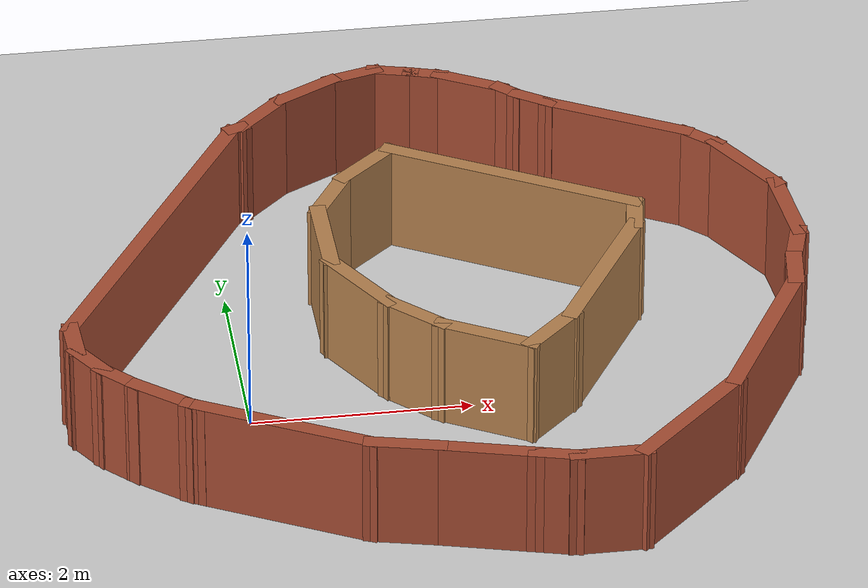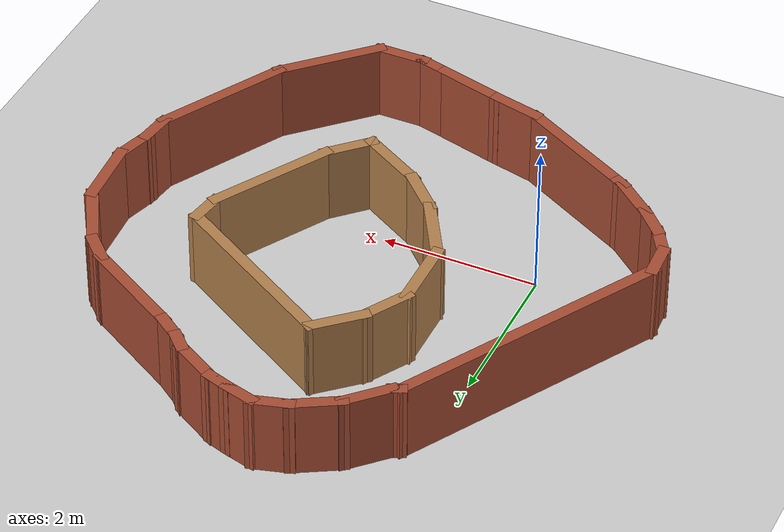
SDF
<sdf version="1.6">
 <world name="default">
  <light name="sun" type="directional">
   <pose>0 0 10 0 -0 0</pose>
   <diffuse>0.8 0.8 0.8 1</diffuse>
   <specular>0.1 0.1 0.1 1</specular>
   <attenuation>
    <range>1000</range>
    <constant>0.9</constant>
    <linear>0.01</linear>
    <quadratic>0.001</quadratic>
   </attenuation>
   <direction>-0.5 0.5 -1</direction>
  </light>
  <model name="ground_plane">
   <static>1</static>
   <link name="link">
    <collision name="collision">
     <geometry><plane><normal>0 0 1</normal><size>100 100</size></plane></geometry>
     <surface><friction><ode><mu>100</mu><mu2>50</mu2></ode></friction></surface>
    </collision>
    <visual name="visual">
     <cast_shadows>0</cast_shadows>
     <geometry><plane><normal>0 0 1</normal><size>100 100</size></plane></geometry>
     <material>
      <script><uri>file://media/materials/scripts/gazebo.material</uri><name>Gazebo/Grey</name></script>
     </material>
    </visual>
   </link>
  </model>
  <gravity>0 0 -9.8</gravity>
  <magnetic_field>6e-06 2.3e-05 -4.2e-05</magnetic_field>
  <atmosphere type="adiabatic"/>
  <physics name="default_physics" default="0" type="ode">
   <max_step_size>0.001</max_step_size>
   <real_time_factor>1</real_time_factor>
   <real_time_update_rate>1000</real_time_update_rate>
  </physics>
  <scene><ambient>0.4 0.4 0.4 1</ambient><background>0.7 0.7 0.7 1</background><shadows>1</shadows></scene>
  <spherical_coordinates>
   <surface_model>EARTH_WGS84</surface_model>
   <latitude_deg>0</latitude_deg>
   <longitude_deg>0</longitude_deg>
   <elevation>0</elevation>
   <heading_deg>0</heading_deg>
  </spherical_coordinates>
  <model name="lab_track2">
   <pose>1.77082 0.952619 0 0 -0 0</pose>
   <link name="Wall_0">
    <collision name="Wall_0_Collision">
     <geometry><box><size>0.75 0.15 1</size></box></geometry>
     <pose>0 0 0.5 0 -0 0</pose>
    </collision>
    <visual name="Wall_0_Visual">
     <pose>0 0 0.5 0 -0 0</pose>
     <geometry><box><size>0.75 0.15 1</size></box></geometry>
     <material>
      <script><uri>file://media/materials/scripts/gazebo.material</uri><name>Gazebo/Bricks</name></script>
      <ambient>1 1 1 1</ambient>
     </material>
    </visual>
    <pose>-0.761534 3.03129 0 0 0 -2.61831</pose>
   </link>
   <link name="Wall_1">
    <collision name="Wall_1_Collision">
     <geometry><box><size>0.745382 0.15 1</size></box></geometry>
     <pose>0 0 0.5 0 -0 0</pose>
    </collision>
    <visual name="Wall_1_Visual">
     <pose>0 0 0.5 0 -0 0</pose>
     <geometry><box><size>0.745382 0.15 1</size></box></geometry>
     <material>
      <script><uri>file://media/materials/scripts/gazebo.material</uri><name>Gazebo/Bricks</name></script>
      <ambient>1 1 1 1</ambient>
     </material>
    </visual>
    <pose>-1.23003 2.66879 0 0 0 -2.34669</pose>
   </link>
   <link name="Wall_10">
    <collision name="Wall_10_Collision">
     <geometry><box><size>0.732644 0.15 1</size></box></geometry>
     <pose>0 0 0.5 0 -0 0</pose>
    </collision>
    <visual name="Wall_10_Visual">
     <pose>0 0 0.5 0 -0 0</pose>
     <geometry><box><size>0.732644 0.15 1</size></box></geometry>
     <material>
      <script><uri>file://media/materials/scripts/gazebo.material</uri><name>Gazebo/Bricks</name></script>
      <ambient>1 1 1 1</ambient>
     </material>
    </visual>
    <pose>-0.652534 -2.90971 0 0 0 -0.235812</pose>
   </link>
   <link name="Wall_11">
    <collision name="Wall_11_Collision">
     <geometry><box><size>0.993767 0.15 1</size></box></geometry>
     <pose>0 0 0.5 0 -0 0</pose>
    </collision>
    <visual name="Wall_11_Visual">
     <pose>0 0 0.5 0 -0 0</pose>
     <geometry><box><size>0.993767 0.15 1</size></box></geometry>
     <material>
      <script><uri>file://media/materials/scripts/gazebo.material</uri><name>Gazebo/Bricks</name></script>
      <ambient>1 1 1 1</ambient>
     </material>
    </visual>
    <pose>0.037966 -3.08771 0 0 0 -0.263655</pose>
   </link>
   <link name="Wall_12">
    <collision name="Wall_12_Collision">
     <geometry><box><size>0.5 0.15 1</size></box></geometry>
     <pose>0 0 0.5 0 -0 0</pose>
    </collision>
    <visual name="Wall_12_Visual">
     <pose>0 0 0.5 0 -0 0</pose>
     <geometry><box><size>0.5 0.15 1</size></box></geometry>
     <material>
      <script><uri>file://media/materials/scripts/gazebo.material</uri><name>Gazebo/Bricks</name></script>
      <ambient>1 1 1 1</ambient>
     </material>
    </visual>
    <pose>0.614466 -3.24271 0 0 0 -0.260234</pose>
   </link>
   <link name="Wall_13">
    <collision name="Wall_13_Collision">
     <geometry><box><size>0.75 0.15 1</size></box></geometry>
     <pose>0 0 0.5 0 -0 0</pose>
    </collision>
    <visual name="Wall_13_Visual">
     <pose>0 0 0.5 0 -0 0</pose>
     <geometry><box><size>0.75 0.15 1</size></box></geometry>
     <material>
      <script><uri>file://media/materials/scripts/gazebo.material</uri><name>Gazebo/Bricks</name></script>
      <ambient>1 1 1 1</ambient>
     </material>
    </visual>
    <pose>1.08347 -3.28771 0 0 -0 0</pose>
   </link>
   <link name="Wall_14">
    <collision name="Wall_14_Collision">
     <geometry><box><size>1.5 0.15 1</size></box></geometry>
     <pose>0 0 0.5 0 -0 0</pose>
    </collision>
    <visual name="Wall_14_Visual">
     <pose>0 0 0.5 0 -0 0</pose>
     <geometry><box><size>1.5 0.15 1</size></box></geometry>
     <material>
      <script><uri>file://media/materials/scripts/gazebo.material</uri><name>Gazebo/Bricks</name></script>
      <ambient>1 1 1 1</ambient>
     </material>
    </visual>
    <pose>1.86047 -2.81071 0 0 -0 0.785398</pose>
   </link>
   <link name="Wall_15">
    <collision name="Wall_15_Collision">
     <geometry><box><size>1.88335 0.15 1</size></box></geometry>
     <pose>0 0 0.5 0 -0 0</pose>
    </collision>
    <visual name="Wall_15_Visual">
     <pose>0 0 0.5 0 -0 0</pose>
     <geometry><box><size>1.88335 0.15 1</size></box></geometry>
     <material>
      <script><uri>file://media/materials/scripts/gazebo.material</uri><name>Gazebo/Bricks</name></script>
      <ambient>1 1 1 1</ambient>
     </material>
    </visual>
    <pose>2.75097 -1.57171 0 0 -0 1.07361</pose>
   </link>
   <link name="Wall_16">
    <collision name="Wall_16_Collision">
     <geometry><box><size>0.523244 0.15 1</size></box></geometry>
     <pose>0 0 0.5 0 -0 0</pose>
    </collision>
    <visual name="Wall_16_Visual">
     <pose>0 0 0.5 0 -0 0</pose>
     <geometry><box><size>0.523244 0.15 1</size></box></geometry>
     <material>
      <script><uri>file://media/materials/scripts/gazebo.material</uri><name>Gazebo/Bricks</name></script>
      <ambient>1 1 1 1</ambient>
     </material>
    </visual>
    <pose>3.19047 -0.62471 0 0 -0 1.43117</pose>
   </link>
   <link name="Wall_17">
    <collision name="Wall_17_Collision">
     <geometry><box><size>0.588397 0.15 1</size></box></geometry>
     <pose>0 0 0.5 0 -0 0</pose>
    </collision>
    <visual name="Wall_17_Visual">
     <pose>0 0 0.5 0 -0 0</pose>
     <geometry><box><size>0.588397 0.15 1</size></box></geometry>
     <material>
      <script><uri>file://media/materials/scripts/gazebo.material</uri><name>Gazebo/Bricks</name></script>
      <ambient>1 1 1 1</ambient>
     </material>
    </visual>
    <pose>3.2776 -0.22921 0 0 -0 1.28814</pose>
   </link>
   <link name="Wall_18">
    <collision name="Wall_18_Collision">
     <geometry><box><size>0.983081 0.15 1</size></box></geometry>
     <pose>0 0 0.5 0 -0 0</pose>
    </collision>
    <visual name="Wall_18_Visual">
     <pose>0 0 0.5 0 -0 0</pose>
     <geometry><box><size>0.983081 0.15 1</size></box></geometry>
     <material>
      <script><uri>file://media/materials/scripts/gazebo.material</uri><name>Gazebo/Bricks</name></script>
      <ambient>1 1 1 1</ambient>
     </material>
    </visual>
    <pose>3.31589 0.39679 0 0 -0 1.6415</pose>
   </link>
   <link name="Wall_19">
    <collision name="Wall_19_Collision">
     <geometry><box><size>1.01372 0.15 1</size></box></geometry>
     <pose>0 0 0.5 0 -0 0</pose>
    </collision>
    <visual name="Wall_19_Visual">
     <pose>0 0 0.5 0 -0 0</pose>
     <geometry><box><size>1.01372 0.15 1</size></box></geometry>
     <material>
      <script><uri>file://media/materials/scripts/gazebo.material</uri><name>Gazebo/Bricks</name></script>
      <ambient>1 1 1 1</ambient>
     </material>
    </visual>
    <pose>3.07747 1.18979 0 0 -0 2.07643</pose>
   </link>
   <link name="Wall_2">
    <collision name="Wall_2_Collision">
     <geometry><box><size>0.248027 0.15 1</size></box></geometry>
     <pose>0 0 0.5 0 -0 0</pose>
    </collision>
    <visual name="Wall_2_Visual">
     <pose>0 0 0.5 0 -0 0</pose>
     <geometry><box><size>0.248027 0.15 1</size></box></geometry>
     <material>
      <script><uri>file://media/materials/scripts/gazebo.material</uri><name>Gazebo/Bricks</name></script>
      <ambient>1 1 1 1</ambient>
     </material>
    </visual>
    <pose>-1.48403 2.43779 0 0 0 -2.75542</pose>
   </link>
   <link name="Wall_20">
    <collision name="Wall_20_Collision">
     <geometry><box><size>0.5 0.15 1</size></box></geometry>
     <pose>0 0 0.5 0 -0 0</pose>
    </collision>
    <visual name="Wall_20_Visual">
     <pose>0 0 0.5 0 -0 0</pose>
     <geometry><box><size>0.5 0.15 1</size></box></geometry>
     <material>
      <script><uri>file://media/materials/scripts/gazebo.material</uri><name>Gazebo/Bricks</name></script>
      <ambient>1 1 1 1</ambient>
     </material>
    </visual>
    <pose>2.74447 1.69129 0 0 -0 2.35619</pose>
   </link>
   <link name="Wall_21">
    <collision name="Wall_21_Collision">
     <geometry><box><size>1.5 0.15 1</size></box></geometry>
     <pose>0 0 0.5 0 -0 0</pose>
    </collision>
    <visual name="Wall_21_Visual">
     <pose>0 0 0.5 0 -0 0</pose>
     <geometry><box><size>1.5 0.15 1</size></box></geometry>
     <material>
      <script><uri>file://media/materials/scripts/gazebo.material</uri><name>Gazebo/Bricks</name></script>
      <ambient>1 1 1 1</ambient>
     </material>
    </visual>
    <pose>2.03597 2.15279 0 0 -0 2.61794</pose>
   </link>
   <link name="Wall_22">
    <collision name="Wall_22_Collision">
     <geometry><box><size>0.474099 0.15 1</size></box></geometry>
     <pose>0 0 0.5 0 -0 0</pose>
    </collision>
    <visual name="Wall_22_Visual">
     <pose>0 0 0.5 0 -0 0</pose>
     <geometry><box><size>0.474099 0.15 1</size></box></geometry>
     <material>
      <script><uri>file://media/materials/scripts/gazebo.material</uri><name>Gazebo/Bricks</name></script>
      <ambient>1 1 1 1</ambient>
     </material>
    </visual>
    <pose>1.31947 2.58429 0 0 -0 2.52278</pose>
   </link>
   <link name="Wall_23">
    <collision name="Wall_23_Collision">
     <geometry><box><size>0.360993 0.15 1</size></box></geometry>
     <pose>0 0 0.5 0 -0 0</pose>
    </collision>
    <visual name="Wall_23_Visual">
     <pose>0 0 0.5 0 -0 0</pose>
     <geometry><box><size>0.360993 0.15 1</size></box></geometry>
     <material>
      <script><uri>file://media/materials/scripts/gazebo.material</uri><name>Gazebo/Bricks</name></script>
      <ambient>1 1 1 1</ambient>
     </material>
    </visual>
    <pose>1.11327 2.75329 0 0 -0 2.35078</pose>
   </link>
   <link name="Wall_24">
    <collision name="Wall_24_Collision">
     <geometry><box><size>0.75 0.15 1</size></box></geometry>
     <pose>0 0 0.5 0 -0 0</pose>
    </collision>
    <visual name="Wall_24_Visual">
     <pose>0 0 0.5 0 -0 0</pose>
     <geometry><box><size>0.75 0.15 1</size></box></geometry>
     <material>
      <script><uri>file://media/materials/scripts/gazebo.material</uri><name>Gazebo/Bricks</name></script>
      <ambient>1 1 1 1</ambient>
     </material>
    </visual>
    <pose>0.779274 2.97829 0 0 -0 2.61799</pose>
   </link>
   <link name="Wall_25">
    <collision name="Wall_25_Collision">
     <geometry><box><size>0.427248 0.15 1</size></box></geometry>
     <pose>0 0 0.5 0 -0 0</pose>
    </collision>
    <visual name="Wall_25_Visual">
     <pose>0 0 0.5 0 -0 0</pose>
     <geometry><box><size>0.427248 0.15 1</size></box></geometry>
     <material>
      <script><uri>file://media/materials/scripts/gazebo.material</uri><name>Gazebo/Bricks</name></script>
      <ambient>1 1 1 1</ambient>
     </material>
    </visual>
    <pose>0.386966 3.16979 0 0 -0 2.83806</pose>
   </link>
   <link name="Wall_26">
    <collision name="Wall_26_Collision">
     <geometry><box><size>0.5 0.15 1</size></box></geometry>
     <pose>0 0 0.5 0 -0 0</pose>
    </collision>
    <visual name="Wall_26_Visual">
     <pose>0 0 0.5 0 -0 0</pose>
     <geometry><box><size>0.5 0.15 1</size></box></geometry>
     <material>
      <script><uri>file://media/materials/scripts/gazebo.material</uri><name>Gazebo/Bricks</name></script>
      <ambient>1 1 1 1</ambient>
     </material>
    </visual>
    <pose>0.085466 3.25629 0 0 -0 2.88136</pose>
   </link>
   <link name="Wall_27">
    <collision name="Wall_27_Collision">
     <geometry><box><size>0.584884 0.15 1</size></box></geometry>
     <pose>0 0 0.5 0 -0 0</pose>
    </collision>
    <visual name="Wall_27_Visual">
     <pose>0 0 0.5 0 -0 0</pose>
     <geometry><box><size>0.584884 0.15 1</size></box></geometry>
     <material>
      <script><uri>file://media/materials/scripts/gazebo.material</uri><name>Gazebo/Bricks</name></script>
      <ambient>1 1 1 1</ambient>
     </material>
    </visual>
    <pose>-0.292534 3.24129 0 0 0 -2.86203</pose>
   </link>
   <link name="Wall_29">
    <collision name="Wall_29_Collision">
     <geometry><box><size>0.806025 0.15 1</size></box></geometry>
     <pose>0 0 0.5 0 -0 0</pose>
    </collision>
    <visual name="Wall_29_Visual">
     <pose>0 0 0.5 0 -0 0</pose>
     <geometry><box><size>0.806025 0.15 1</size></box></geometry>
     <material>
      <script><uri>file://media/materials/scripts/gazebo.material</uri><name>Gazebo/Wood</name></script>
      <ambient>0.996078 0.47451 0.0196078 1</ambient>
     </material>
    </visual>
    <pose>-0.375034 1.66329 0 0 0 -2.39824</pose>
   </link>
   <link name="Wall_3">
    <collision name="Wall_3_Collision">
     <geometry><box><size>3.75593 0.15 1</size></box></geometry>
     <pose>0 0 0.5 0 -0 0</pose>
    </collision>
    <visual name="Wall_3_Visual">
     <pose>0 0 0.5 0 -0 0</pose>
     <geometry><box><size>3.75593 0.15 1</size></box></geometry>
     <material>
      <script><uri>file://media/materials/scripts/gazebo.material</uri><name>Gazebo/Bricks</name></script>
      <ambient>1 1 1 1</ambient>
     </material>
    </visual>
    <pose>-2.4294 0.85694 0 0 0 -2.09336</pose>
   </link>
   <link name="Wall_30">
    <collision name="Wall_30_Collision">
     <geometry><box><size>0.75 0.15 1</size></box></geometry>
     <pose>0 0 0.5 0 -0 0</pose>
    </collision>
    <visual name="Wall_30_Visual">
     <pose>0 0 0.5 0 -0 0</pose>
     <geometry><box><size>0.75 0.15 1</size></box></geometry>
     <material>
      <script><uri>file://media/materials/scripts/gazebo.material</uri><name>Gazebo/Wood</name></script>
      <ambient>0.996078 0.47451 0.0196078 1</ambient>
     </material>
    </visual>
    <pose>-0.766534 1.18179 0 0 0 -2.09491</pose>
   </link>
   <link name="Wall_31">
    <collision name="Wall_31_Collision">
     <geometry><box><size>1.00664 0.15 1</size></box></geometry>
     <pose>0 0 0.5 0 -0 0</pose>
    </collision>
    <visual name="Wall_31_Visual">
     <pose>0 0 0.5 0 -0 0</pose>
     <geometry><box><size>1.00664 0.15 1</size></box></geometry>
     <material>
      <script><uri>file://media/materials/scripts/gazebo.material</uri><name>Gazebo/Wood</name></script>
      <ambient>0.996078 0.47451 0.0196078 1</ambient>
     </material>
    </visual>
    <pose>-0.913534 0.49379 0 0 0 -1.5638</pose>
   </link>
   <link name="Wall_32">
    <collision name="Wall_32_Collision">
     <geometry><box><size>1.0005 0.15 1</size></box></geometry>
     <pose>0 0 0.5 0 -0 0</pose>
    </collision>
    <visual name="Wall_32_Visual">
     <pose>0 0 0.5 0 -0 0</pose>
     <geometry><box><size>1.0005 0.15 1</size></box></geometry>
     <material>
      <script><uri>file://media/materials/scripts/gazebo.material</uri><name>Gazebo/Wood</name></script>
      <ambient>0.996078 0.47451 0.0196078 1</ambient>
     </material>
    </visual>
    <pose>-0.697534 -0.30321 0 0 0 -1.0467</pose>
   </link>
   <link name="Wall_33">
    <collision name="Wall_33_Collision">
     <geometry><box><size>0.739727 0.15 1</size></box></geometry>
     <pose>0 0 0.5 0 -0 0</pose>
    </collision>
    <visual name="Wall_33_Visual">
     <pose>0 0 0.5 0 -0 0</pose>
     <geometry><box><size>0.739727 0.15 1</size></box></geometry>
     <material>
      <script><uri>file://media/materials/scripts/gazebo.material</uri><name>Gazebo/Wood</name></script>
      <ambient>0.996078 0.47451 0.0196078 1</ambient>
     </material>
    </visual>
    <pose>-0.276034 -0.88021 0 0 0 -0.785398</pose>
   </link>
   <link name="Wall_34">
    <collision name="Wall_34_Collision">
     <geometry><box><size>1 0.15 1</size></box></geometry>
     <pose>0 0 0.5 0 -0 0</pose>
    </collision>
    <visual name="Wall_34_Visual">
     <pose>0 0 0.5 0 -0 0</pose>
     <geometry><box><size>1 0.15 1</size></box></geometry>
     <material>
      <script><uri>file://media/materials/scripts/gazebo.material</uri><name>Gazebo/Wood</name></script>
      <ambient>0.996078 0.47451 0.0196078 1</ambient>
     </material>
    </visual>
    <pose>0.300466 -1.30121 0 0 0 -0.52367</pose>
   </link>
   <link name="Wall_35">
    <collision name="Wall_35_Collision">
     <geometry><box><size>0.75 0.15 1</size></box></geometry>
     <pose>0 0 0.5 0 -0 0</pose>
    </collision>
    <visual name="Wall_35_Visual">
     <pose>0 0 0.5 0 -0 0</pose>
     <geometry><box><size>0.75 0.15 1</size></box></geometry>
     <material>
      <script><uri>file://media/materials/scripts/gazebo.material</uri><name>Gazebo/Wood</name></script>
      <ambient>0.996078 0.47451 0.0196078 1</ambient>
     </material>
    </visual>
    <pose>0.880466 -1.30171 0 0 -0 0.785398</pose>
   </link>
   <link name="Wall_36">
    <collision name="Wall_36_Collision">
     <geometry><box><size>1.75 0.15 1</size></box></geometry>
     <pose>0 0 0.5 0 -0 0</pose>
    </collision>
    <visual name="Wall_36_Visual">
     <pose>0 0 0.5 0 -0 0</pose>
     <geometry><box><size>1.75 0.15 1</size></box></geometry>
     <material>
      <script><uri>file://media/materials/scripts/gazebo.material</uri><name>Gazebo/Wood</name></script>
      <ambient>0.996078 0.47451 0.0196078 1</ambient>
     </material>
    </visual>
    <pose>1.49247 -0.39671 0 0 -0 1.04731</pose>
   </link>
   <link name="Wall_37">
    <collision name="Wall_37_Collision">
     <geometry><box><size>0.524431 0.15 1</size></box></geometry>
     <pose>0 0 0.5 0 -0 0</pose>
    </collision>
    <visual name="Wall_37_Visual">
     <pose>0 0 0.5 0 -0 0</pose>
     <geometry><box><size>0.524431 0.15 1</size></box></geometry>
     <material>
      <script><uri>file://media/materials/scripts/gazebo.material</uri><name>Gazebo/Wood</name></script>
      <ambient>0.996078 0.47451 0.0196078 1</ambient>
     </material>
    </visual>
    <pose>1.92247 0.48129 0 0 -0 1.41003</pose>
   </link>
   <link name="Wall_38">
    <collision name="Wall_38_Collision">
     <geometry><box><size>2.56571 0.15 1</size></box></geometry>
     <pose>0 0 0.5 0 -0 0</pose>
    </collision>
    <visual name="Wall_38_Visual">
     <pose>0 0 0.5 0 -0 0</pose>
     <geometry><box><size>2.56571 0.15 1</size></box></geometry>
     <material>
      <script><uri>file://media/materials/scripts/gazebo.material</uri><name>Gazebo/Wood</name></script>
      <ambient>0.996078 0.47451 0.0196078 1</ambient>
     </material>
    </visual>
    <pose>0.909466 1.27579 0 0 -0 2.61274</pose>
   </link>
   <link name="Wall_4">
    <collision name="Wall_4_Collision">
     <geometry><box><size>0.533384 0.15 1</size></box></geometry>
     <pose>0 0 0.5 0 -0 0</pose>
    </collision>
    <visual name="Wall_4_Visual">
     <pose>0 0 0.5 0 -0 0</pose>
     <geometry><box><size>0.533384 0.15 1</size></box></geometry>
     <material>
      <script><uri>file://media/materials/scripts/gazebo.material</uri><name>Gazebo/Bricks</name></script>
      <ambient>1 1 1 1</ambient>
     </material>
    </visual>
    <pose>-3.3194 -0.890272 0 0 0 -1.51932</pose>
   </link>
   <link name="Wall_5">
    <collision name="Wall_5_Collision">
     <geometry><box><size>0.521323 0.15 1</size></box></geometry>
     <pose>0 0 0.5 0 -0 0</pose>
    </collision>
    <visual name="Wall_5_Visual">
     <pose>0 0 0.5 0 -0 0</pose>
     <geometry><box><size>0.521323 0.15 1</size></box></geometry>
     <material>
      <script><uri>file://media/materials/scripts/gazebo.material</uri><name>Gazebo/Bricks</name></script>
      <ambient>1 1 1 1</ambient>
     </material>
    </visual>
    <pose>-3.21203 -1.23971 0 0 0 -1.01791</pose>
   </link>
   <link name="Wall_6">
    <collision name="Wall_6_Collision">
     <geometry><box><size>0.537342 0.15 1</size></box></geometry>
     <pose>0 0 0.5 0 -0 0</pose>
    </collision>
    <visual name="Wall_6_Visual">
     <pose>0 0 0.5 0 -0 0</pose>
     <geometry><box><size>0.537342 0.15 1</size></box></geometry>
     <material>
      <script><uri>file://media/materials/scripts/gazebo.material</uri><name>Gazebo/Bricks</name></script>
      <ambient>1 1 1 1</ambient>
     </material>
    </visual>
    <pose>-2.98117 -1.53815 0 0 0 -0.811233</pose>
   </link>
   <link name="Wall_7">
    <collision name="Wall_7_Collision">
     <geometry><box><size>0.705584 0.15 1</size></box></geometry>
     <pose>0 0 0.5 0 -0 0</pose>
    </collision>
    <visual name="Wall_7_Visual">
     <pose>0 0 0.5 0 -0 0</pose>
     <geometry><box><size>0.705584 0.15 1</size></box></geometry>
     <material>
      <script><uri>file://media/materials/scripts/gazebo.material</uri><name>Gazebo/Bricks</name></script>
      <ambient>1 1 1 1</ambient>
     </material>
    </visual>
    <pose>-2.63567 -1.85136 0 0 0 -0.701842</pose>
   </link>
   <link name="Wall_8">
    <collision name="Wall_8_Collision">
     <geometry><box><size>0.25 0.15 1</size></box></geometry>
     <pose>0 0 0.5 0 -0 0</pose>
    </collision>
    <visual name="Wall_8_Visual">
     <pose>0 0 0.5 0 -0 0</pose>
     <geometry><box><size>0.25 0.15 1</size></box></geometry>
     <material>
      <script><uri>file://media/materials/scripts/gazebo.material</uri><name>Gazebo/Bricks</name></script>
      <ambient>1 1 1 1</ambient>
     </material>
    </visual>
    <pose>-2.38003 -2.05571 0 0 0 -0.521618</pose>
   </link>
   <link name="Wall_9">
    <collision name="Wall_9_Collision">
     <geometry><box><size>1.74434 0.15 1</size></box></geometry>
     <pose>0 0 0.5 0 -0 0</pose>
    </collision>
    <visual name="Wall_9_Visual">
     <pose>0 0 0.5 0 -0 0</pose>
     <geometry><box><size>1.74434 0.15 1</size></box></geometry>
     <material>
      <script><uri>file://media/materials/scripts/gazebo.material</uri><name>Gazebo/Bricks</name></script>
      <ambient>1 1 1 1</ambient>
     </material>
    </visual>
    <pose>-1.63603 -2.46121 0 0 0 -0.497595</pose>
   </link>
   <static>1</static>
  </model>
 </world>
</sdf>
